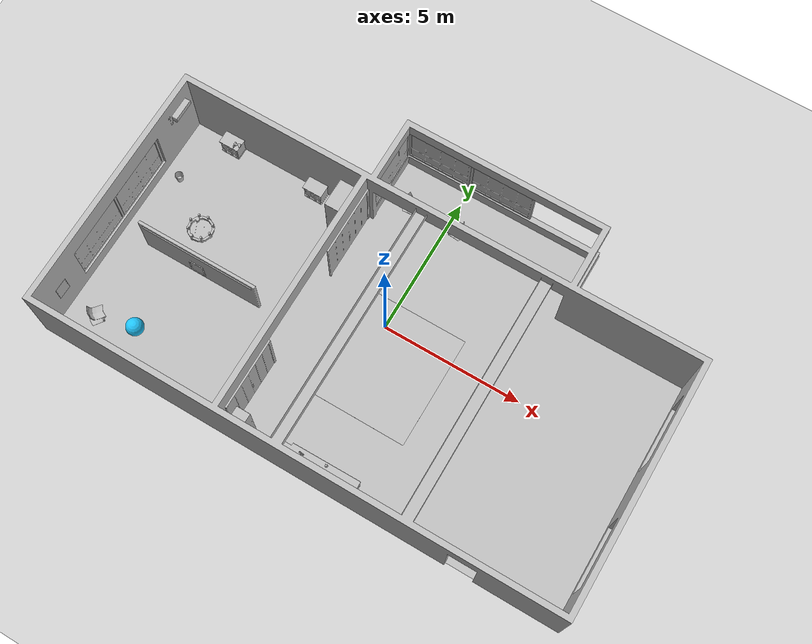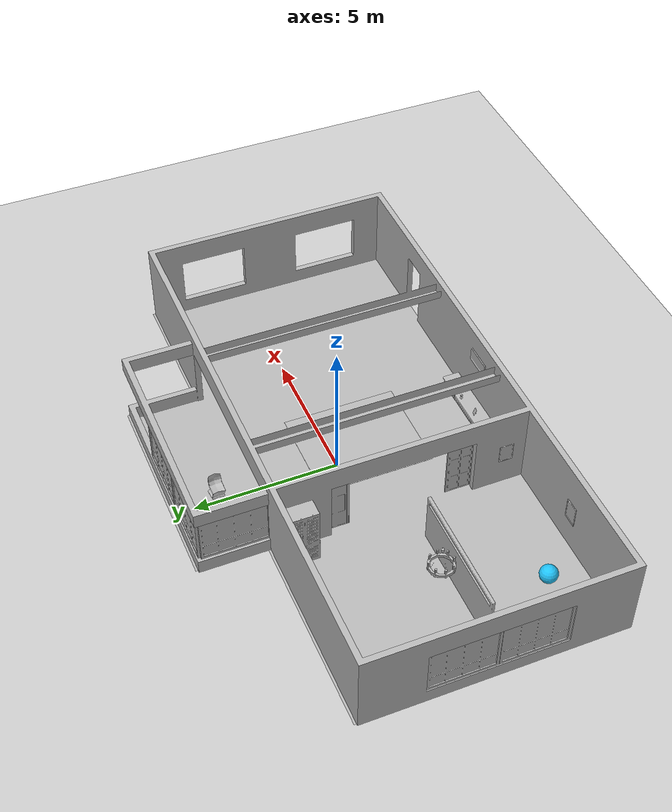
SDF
<sdf version="1.6">
 <world name="default">
  <model name="ground_plane">
   <static>1</static>
   <link name="link">
    <collision name="collision">
     <geometry><plane><normal>0 0 1</normal><size>100 100</size></plane></geometry>
     <surface><friction><ode><mu>100</mu><mu2>50</mu2></ode></friction></surface>
    </collision>
    <visual name="visual">
     <cast_shadows>0</cast_shadows>
     <geometry><plane><normal>0 0 1</normal><size>100 100</size></plane></geometry>
     <material>
      <script><uri>file://media/materials/scripts/gazebo.material</uri><name>Gazebo/Grey</name></script>
     </material>
    </visual>
   </link>
  </model>
  <model name="AirconditionerA_01_001">
   <link name="aws_robomaker_residential_AirconditionerA_01::link">
    <inertial><mass>1</mass></inertial>
    <collision name="collision">
     <geometry>
      <mesh>
       <uri>file://models/aws_robomaker_residential_AirconditionerA_01/meshes/aws_AirconditionerA_01_collision.DAE</uri>
       <scale>1 1 1</scale>
      </mesh>
     </geometry>
    </collision>
    <visual name="visual">
     <geometry>
      <mesh>
       <uri>file://models/aws_robomaker_residential_AirconditionerA_01/meshes/aws_AirconditionerA_01_visual.DAE</uri>
      </mesh>
     </geometry>
     <meta><layer>1</layer></meta>
    </visual>
   </link>
   <static>1</static>
   <pose>-9.19941 2.41123 2.08454 0 -0 0</pose>
  </model>
  <model name="AirconditionerB_01_001">
   <link name="aws_robomaker_residential_AirconditionerB_01::link">
    <inertial>
     <mass>1</mass>
     <inertia><ixx>1</ixx><ixy>0</ixy><ixz>0</ixz><iyy>1</iyy><iyz>0</iyz><izz>1</izz></inertia>
    </inertial>
    <collision name="collision">
     <geometry>
      <mesh>
       <uri>file://models/aws_robomaker_residential_AirconditionerB_01/meshes/aws_AirconditionerB_01_collision.DAE</uri>
       <scale>1 1 1</scale>
      </mesh>
     </geometry>
    </collision>
    <visual name="visual">
     <geometry>
      <mesh>
       <uri>file://models/aws_robomaker_residential_AirconditionerB_01/meshes/aws_AirconditionerB_01_visual.DAE</uri>
      </mesh>
     </geometry>
     <meta><layer>1</layer></meta>
    </visual>
   </link>
   <pose>-2.00466 -5.22661 0.003476 1e-06 -0 0</pose>
  </model>
  <model name="Ball_01_003">
   <link name="aws_robomaker_residential_Ball_01::link">
    <inertial>
     <mass>0.12</mass>
     <inertia>
      <ixx>0.030752</ixx>
      <ixy>0</ixy>
      <ixz>0</ixz>
      <iyy>0.030752</iyy>
      <iyz>0</iyz>
      <izz>0.030752</izz>
     </inertia>
    </inertial>
    <collision name="collision">
     <geometry><sphere><radius>0.31</radius></sphere></geometry>
     <surface>
      <friction><ode><mu>0.85</mu><mu2>0.85</mu2></ode></friction>
      <contact><ode><kd>8500</kd><max_vel>5.1</max_vel></ode></contact>
     </surface>
    </collision>
    <visual name="visual">
     <geometry><sphere><radius>0.31</radius></sphere></geometry>
     <material><diffuse>0.12 0.76 0.97 1</diffuse><ambient>0.03 0.21 0.27 1</ambient></material>
     <meta><layer>1</layer></meta>
    </visual>
   </link>
   <pose>-6.9455 -4.22174 0.31 0 -0 0</pose>
  </model>
  <model name="NightStand_01_001">
   <link name="aws_robomaker_residential_NightStand_01::link">
    <inertial>
     <mass>13.6</mass>
     <inertia><ixx>0.6165</ixx><ixy>0</ixy><ixz>0</ixz><iyy>1.29664</iyy><iyz>0</iyz><izz>0.7706</izz></inertia>
    </inertial>
    <collision name="collision">
     <geometry>
      <mesh>
       <uri>file://models/aws_robomaker_residential_NightStand_01/meshes/aws_NightStand_01_collision.DAE</uri>
       <scale>1 1 1</scale>
      </mesh>
     </geometry>
    </collision>
    <visual name="visual">
     <geometry>
      <mesh>
       <uri>file://models/aws_robomaker_residential_NightStand_01/meshes/aws_NightStand_01_visual.DAE</uri>
      </mesh>
     </geometry>
     <meta><layer>1</layer></meta>
    </visual>
   </link>
   <static>1</static>
   <pose>-7.72551 2.86042 0.005258 -2e-06 0 0</pose>
  </model>
  <model name="NightStand_01_002">
   <link name="aws_robomaker_residential_NightStand_01::link">
    <inertial>
     <mass>13.6</mass>
     <inertia><ixx>0.6165</ixx><ixy>0</ixy><ixz>0</ixz><iyy>1.29664</iyy><iyz>0</iyz><izz>0.7706</izz></inertia>
    </inertial>
    <collision name="collision">
     <geometry>
      <mesh>
       <uri>file://models/aws_robomaker_residential_NightStand_01/meshes/aws_NightStand_01_collision.DAE</uri>
       <scale>1 1 1</scale>
      </mesh>
     </geometry>
    </collision>
    <visual name="visual">
     <geometry>
      <mesh>
       <uri>file://models/aws_robomaker_residential_NightStand_01/meshes/aws_NightStand_01_visual.DAE</uri>
      </mesh>
     </geometry>
     <meta><layer>1</layer></meta>
    </visual>
   </link>
   <static>1</static>
   <pose>-4.40734 2.86042 0.005256 0 2e-06 0</pose>
  </model>
  <model name="ChairD_01_001">
   <link name="aws_robomaker_residential_ChairD_01::link">
    <inertial>
     <mass>4.5</mass>
     <inertia><ixy>0</ixy><ixz>0</ixz><iyz>0</iyz><ixx>0.217</ixx><iyy>0.217</iyy><izz>0.067</izz></inertia>
    </inertial>
    <collision name="collision">
     <geometry>
      <mesh>
       <uri>file://models/aws_robomaker_residential_ChairD_01/meshes/aws_ChairD_01_collision.DAE</uri>
       <scale>1 1 1</scale>
      </mesh>
     </geometry>
    </collision>
    <visual name="visual">
     <geometry>
      <mesh><uri>file://models/aws_robomaker_residential_ChairD_01/meshes/aws_ChairD_01_visual.DAE</uri></mesh>
     </geometry>
     <meta><layer>1</layer></meta>
    </visual>
   </link>
   <pose>-1.38078 4.10446 -0.000255 -1.3e-05 0.000975 -2e-06</pose>
  </model>
  <model name="ChairD_01_002">
   <link name="aws_robomaker_residential_ChairD_01::link">
    <inertial>
     <mass>4.5</mass>
     <inertia><ixy>0</ixy><ixz>0</ixz><iyz>0</iyz><ixx>0.217</ixx><iyy>0.217</iyy><izz>0.067</izz></inertia>
    </inertial>
    <collision name="collision">
     <geometry>
      <mesh>
       <uri>file://models/aws_robomaker_residential_ChairD_01/meshes/aws_ChairD_01_collision.DAE</uri>
       <scale>1 1 1</scale>
      </mesh>
     </geometry>
    </collision>
    <visual name="visual">
     <geometry>
      <mesh><uri>file://models/aws_robomaker_residential_ChairD_01/meshes/aws_ChairD_01_visual.DAE</uri></mesh>
     </geometry>
     <meta><layer>1</layer></meta>
    </visual>
   </link>
   <pose>0.325213 4.10446 -0.000251 -5e-06 0.000976 -3.13874</pose>
  </model>
  <model name="ChairD_01_003">
   <link name="aws_robomaker_residential_ChairD_01::link">
    <inertial>
     <mass>4.5</mass>
     <inertia><ixy>0</ixy><ixz>0</ixz><iyz>0</iyz><ixx>0.217</ixx><iyy>0.217</iyy><izz>0.067</izz></inertia>
    </inertial>
    <collision name="collision">
     <geometry>
      <mesh>
       <uri>file://models/aws_robomaker_residential_ChairD_01/meshes/aws_ChairD_01_collision.DAE</uri>
       <scale>1 1 1</scale>
      </mesh>
     </geometry>
    </collision>
    <visual name="visual">
     <geometry>
      <mesh><uri>file://models/aws_robomaker_residential_ChairD_01/meshes/aws_ChairD_01_visual.DAE</uri></mesh>
     </geometry>
     <meta><layer>1</layer></meta>
    </visual>
   </link>
   <pose>-8.27077 -4.50445 -0.000255 -2.4e-05 0.000974 0.869678</pose>
  </model>
  <model name="Chandelier_01_002">
   <link name="aws_robomaker_residential_Chandelier_01::link">
    <inertial><mass>1</mass></inertial>
    <collision name="collision">
     <geometry>
      <mesh>
       <uri>file://models/aws_robomaker_residential_Chandelier_01/meshes/aws_Chandelier_01_collision.DAE</uri>
       <scale>1 1 1</scale>
      </mesh>
     </geometry>
    </collision>
    <visual name="visual">
     <geometry>
      <mesh>
       <uri>file://models/aws_robomaker_residential_Chandelier_01/meshes/aws_Chandelier_01_visual.DAE</uri>
      </mesh>
     </geometry>
     <meta><layer>2</layer></meta>
    </visual>
   </link>
   <static>1</static>
   <pose>-6.45106 -0.69204 1.81 0 -0 0</pose>
  </model>
  <model name="Carpet_01_001">
   <link name="aws_robomaker_residential_Carpet_01::link">
    <inertial><mass>8.1</mass></inertial>
    <collision name="collision">
     <geometry>
      <mesh>
       <uri>file://models/aws_robomaker_residential_Carpet_01/meshes/aws_Carpet_01_collision.DAE</uri>
       <scale>1 1 0.95</scale>
      </mesh>
     </geometry>
     <pose>0 0 -0.01 0 -0 0</pose>
    </collision>
    <visual name="visual">
     <geometry>
      <mesh><uri>file://models/aws_robomaker_residential_Carpet_01/meshes/aws_Carpet_01_visual.DAE</uri></mesh>
     </geometry>
     <meta><layer>1</layer></meta>
    </visual>
   </link>
   <static>1</static>
   <pose>0.78505 -1.10665 0.001106 0 -0 0</pose>
  </model>
  <model name="SecurityCamera_01_001">
   <link name="aws_robomaker_residential_SecurityCamera_01::link">
    <inertial>
     <mass>1</mass>
     <inertia>
      <ixx>18.2222</ixx>
      <ixy>0</ixy>
      <ixz>0</ixz>
      <iyy>18.2222</iyy>
      <iyz>0</iyz>
      <izz>0.0018767</izz>
     </inertia>
    </inertial>
    <collision name="collision">
     <geometry>
      <mesh>
       <uri>file://models/aws_robomaker_residential_SecurityCamera_01/meshes/aws_SecurityCamera_01_collision.DAE</uri>
       <scale>1 1 1</scale>
      </mesh>
     </geometry>
    </collision>
    <visual name="visual">
     <geometry>
      <mesh>
       <uri>file://models/aws_robomaker_residential_SecurityCamera_01/meshes/aws_SecurityCamera_01_visual.DAE</uri>
      </mesh>
     </geometry>
     <meta><layer>2</layer></meta>
    </visual>
   </link>
   <pose>0.842134 -4.99629 0.492555 1e-06 -2e-06 -2.84104</pose>
  </model>
  <model name="FoldingDoor_01_001">
   <link name="aws_robomaker_residential_FoldingDoor_01::link">
    <inertial><mass>1</mass></inertial>
    <collision name="collision">
     <geometry>
      <mesh>
       <uri>file://models/aws_robomaker_residential_FoldingDoor_01/meshes/aws_FoldingDoor_01_collision.DAE</uri>
       <scale>1 1 1</scale>
      </mesh>
     </geometry>
    </collision>
    <visual name="visual">
     <geometry>
      <mesh>
       <uri>file://models/aws_robomaker_residential_FoldingDoor_01/meshes/aws_FoldingDoor_01_visual.DAE</uri>
      </mesh>
     </geometry>
     <meta><layer>2</layer></meta>
    </visual>
   </link>
   <static>1</static>
   <pose>-2.4611 1.84422 0.041881 0 -0 0</pose>
  </model>
  <model name="FoldingDoor_01_002">
   <link name="aws_robomaker_residential_FoldingDoor_01::link">
    <inertial><mass>1</mass></inertial>
    <collision name="collision">
     <geometry>
      <mesh>
       <uri>file://models/aws_robomaker_residential_FoldingDoor_01/meshes/aws_FoldingDoor_01_collision.DAE</uri>
       <scale>1 1 1</scale>
      </mesh>
     </geometry>
    </collision>
    <visual name="visual">
     <geometry>
      <mesh>
       <uri>file://models/aws_robomaker_residential_FoldingDoor_01/meshes/aws_FoldingDoor_01_visual.DAE</uri>
      </mesh>
     </geometry>
     <meta><layer>2</layer></meta>
    </visual>
   </link>
   <static>1</static>
   <pose>-2.4611 -4.05332 0.041881 0 -0 0</pose>
  </model>
  <model name="HouseWallB_01_001">
   <link name="aws_robomaker_residential_HouseWallB_01::link">
    <inertial><mass>1</mass></inertial>
    <collision name="collision">
     <geometry>
      <mesh>
       <uri>file://models/aws_robomaker_residential_HouseWallB_01/meshes/aws_HouseWallB_01_collision.DAE</uri>
       <scale>1 1 1</scale>
      </mesh>
     </geometry>
    </collision>
    <visual name="visual">
     <geometry>
      <mesh>
       <uri>file://models/aws_robomaker_residential_HouseWallB_01/meshes/aws_HouseWallB_01_visual.DAE</uri>
      </mesh>
     </geometry>
     <meta><layer>2</layer></meta>
    </visual>
   </link>
   <static>1</static>
  </model>
  <model name="FloorB_01_001">
   <link name="aws_robomaker_residential_FloorB_01::link">
    <inertial><mass>100</mass></inertial>
    <collision name="collision">
     <geometry>
      <mesh>
       <uri>file://models/aws_robomaker_residential_FloorB_01/meshes/aws_FloorB_01_collision.DAE</uri>
       <scale>1 1 0.9</scale>
      </mesh>
     </geometry>
     <surface><friction><ode><mu>0.6</mu><mu2>0.6</mu2></ode></friction></surface>
    </collision>
    <visual name="visual">
     <geometry>
      <mesh><uri>file://models/aws_robomaker_residential_FloorB_01/meshes/aws_FloorB_01_visual.DAE</uri></mesh>
     </geometry>
     <meta><layer>1</layer></meta>
    </visual>
   </link>
   <static>1</static>
   <pose>0.058861 0.080239 0 0 -0 0</pose>
  </model>
  <model name="LightC_01_002">
   <link name="aws_robomaker_residential_LightC_01::link">
    <inertial><mass>1</mass></inertial>
    <collision name="collision">
     <geometry>
      <mesh>
       <uri>file://models/aws_robomaker_residential_LightC_01/meshes/aws_LightC_01_collision.DAE</uri>
       <scale>1 1 1</scale>
      </mesh>
     </geometry>
    </collision>
    <visual name="visual">
     <geometry>
      <mesh><uri>file://models/aws_robomaker_residential_LightC_01/meshes/aws_LightC_01_visual.DAE</uri></mesh>
     </geometry>
     <meta><layer>2</layer></meta>
    </visual>
   </link>
   <static>1</static>
   <pose>-0.138245 -5.44437 2 0 -0 0</pose>
  </model>
  <model name="PortraitA_01">
   <link name="aws_robomaker_residential_PortraitA_01::link">
    <inertial><mass>1</mass></inertial>
    <collision name="collision">
     <geometry>
      <mesh>
       <uri>file://models/aws_robomaker_residential_PortraitA_01/meshes/aws_PortraitA_01_collision.DAE</uri>
       <scale>1 1 1</scale>
      </mesh>
     </geometry>
    </collision>
    <visual name="visual">
     <geometry>
      <mesh>
       <uri>file://models/aws_robomaker_residential_PortraitA_01/meshes/aws_PortraitA_01_visual.DAE</uri>
      </mesh>
     </geometry>
     <meta><layer>2</layer></meta>
    </visual>
   </link>
   <static>1</static>
   <pose>-2.71236 -4.81754 1 0 -0 1.5668</pose>
  </model>
  <model name="PortraitB_01">
   <link name="aws_robomaker_residential_PortraitB_01::link">
    <inertial><mass>1</mass></inertial>
    <collision name="collision">
     <geometry>
      <mesh>
       <uri>file://models/aws_robomaker_residential_PortraitB_01/meshes/aws_PortraitB_01_collision.DAE</uri>
       <scale>1 1 1</scale>
      </mesh>
     </geometry>
    </collision>
    <visual name="visual">
     <geometry>
      <mesh>
       <uri>file://models/aws_robomaker_residential_PortraitB_01/meshes/aws_PortraitB_01_visual.DAE</uri>
      </mesh>
     </geometry>
     <meta><layer>2</layer></meta>
    </visual>
   </link>
   <static>1</static>
   <pose>-1.27968 -5.42963 0 -0.076901 0 -3.11672</pose>
  </model>
  <model name="PortraitC_01">
   <link name="aws_robomaker_residential_PortraitC_01::link">
    <inertial><mass>1</mass></inertial>
    <collision name="collision">
     <geometry>
      <mesh>
       <uri>file://models/aws_robomaker_residential_PortraitC_01/meshes/aws_PortraitC_01_collision.DAE</uri>
       <scale>1 1 1</scale>
      </mesh>
     </geometry>
    </collision>
    <visual name="visual">
     <geometry>
      <mesh>
       <uri>file://models/aws_robomaker_residential_PortraitC_01/meshes/aws_PortraitC_01_visual.DAE</uri>
      </mesh>
     </geometry>
     <meta><layer>2</layer></meta>
    </visual>
   </link>
   <static>1</static>
   <pose>-9.2949 -4.52608 1 0 -0 1.55473</pose>
  </model>
  <model name="PortraitD_01">
   <link name="aws_robomaker_residential_PortraitD_01::link">
    <inertial><mass>1.5</mass></inertial>
    <collision name="collision">
     <geometry>
      <mesh>
       <uri>file://models/aws_robomaker_residential_PortraitD_01/meshes/aws_PortraitD_01_collision.DAE</uri>
       <scale>1 1 1</scale>
      </mesh>
     </geometry>
    </collision>
    <visual name="visual">
     <geometry>
      <mesh>
       <uri>file://models/aws_robomaker_residential_PortraitD_01/meshes/aws_PortraitD_01_visual.DAE</uri>
      </mesh>
     </geometry>
     <meta><layer>2</layer></meta>
    </visual>
   </link>
   <static>1</static>
   <pose>0.789763 -5.47872 1.8 0 -0 3.13853</pose>
  </model>
  <model name="PortraitE_01">
   <link name="aws_robomaker_residential_PortraitE_01::link">
    <inertial><mass>1</mass></inertial>
    <collision name="collision">
     <geometry>
      <mesh>
       <uri>file://models/aws_robomaker_residential_PortraitE_01/meshes/aws_PortraitE_01_collision.DAE</uri>
       <scale>1 1 1</scale>
      </mesh>
     </geometry>
    </collision>
    <visual name="visual">
     <geometry>
      <mesh>
       <uri>file://models/aws_robomaker_residential_PortraitE_01/meshes/aws_PortraitE_01_visual.DAE</uri>
      </mesh>
     </geometry>
     <meta><layer>2</layer></meta>
    </visual>
   </link>
   <static>1</static>
   <pose>-5.77309 -5.49247 1 0 -0 3.13263</pose>
  </model>
  <model name="PortraitE_02">
   <link name="aws_robomaker_residential_PortraitE_02::link">
    <inertial><mass>1</mass></inertial>
    <collision name="collision">
     <geometry>
      <mesh>
       <uri>file://models/aws_robomaker_residential_PortraitE_02/meshes/aws_PortraitE_01_collision.DAE</uri>
       <scale>1 1 1</scale>
      </mesh>
     </geometry>
    </collision>
    <visual name="visual">
     <geometry>
      <mesh>
       <uri>file://models/aws_robomaker_residential_PortraitE_02/meshes/aws_PortraitE_01_visual.DAE</uri>
      </mesh>
     </geometry>
     <meta><layer>2</layer></meta>
    </visual>
   </link>
   <static>1</static>
   <pose>-6.19302 -1.59021 0.3 0 -0 0.00429</pose>
  </model>
  <model name="DeskPortraitA_01">
   <link name="aws_robomaker_residential_DeskPortraitA_01::link">
    <inertial>
     <mass>1</mass>
     <inertia><ixx>0.0835</ixx><ixy>0</ixy><ixz>0</ixz><iyy>0.16</iyy><iyz>0</iyz><izz>0.08347</izz></inertia>
    </inertial>
    <collision name="collision">
     <geometry>
      <mesh>
       <uri>file://models/aws_robomaker_residential_DeskPortraitA_01/meshes/aws_DeskPortraitA_01_collision.DAE</uri>
       <scale>1 1 1</scale>
      </mesh>
     </geometry>
    </collision>
    <visual name="visual">
     <geometry>
      <mesh>
       <uri>file://models/aws_robomaker_residential_DeskPortraitA_01/meshes/aws_DeskPortraitA_01_visual.DAE</uri>
      </mesh>
     </geometry>
     <meta><layer>1</layer></meta>
    </visual>
   </link>
   <pose>-0.036864 -5.11016 0.4926 -0.00054 -2e-06 2.92775</pose>
  </model>
  <model name="DeskPortraitD_02">
   <link name="aws_robomaker_residential_DeskPortraitD_02::link">
    <inertial>
     <mass>0.4</mass>
     <inertia><ixx>0.0616</ixx><ixy>0</ixy><ixz>0</ixz><iyy>0.1313</iyy><iyz>0</iyz><izz>0.0803</izz></inertia>
    </inertial>
    <collision name="collision">
     <geometry>
      <mesh>
       <uri>file://models/aws_robomaker_residential_DeskPortraitD_02/meshes/aws_DeskPortraitD_01_collision.DAE</uri>
       <scale>1 1 1</scale>
      </mesh>
     </geometry>
     <surface>
      <friction><ode><mu>0.7</mu><mu2>0.7</mu2></ode></friction>
      <contact><ode><kd>28500</kd></ode></contact>
     </surface>
    </collision>
    <visual name="visual">
     <geometry>
      <mesh>
       <uri>file://models/aws_robomaker_residential_DeskPortraitD_02/meshes/aws_DeskPortraitD_01_visual.DAE</uri>
      </mesh>
     </geometry>
     <meta><layer>1</layer></meta>
    </visual>
   </link>
   <pose>-0.589211 -5.10989 0.192362 2e-06 -0 -3.11254</pose>
  </model>
  <model name="Trash_01_002">
   <link name="aws_robomaker_residential_Trash_01::link">
    <inertial>
     <mass>0.1</mass>
     <inertia><ixy>0</ixy><ixz>0</ixz><iyz>0</iyz><ixx>0.05288</ixx><iyy>0.05288</iyy><izz>0.09132</izz></inertia>
    </inertial>
    <collision name="collision">
     <geometry>
      <mesh>
       <uri>file://models/aws_robomaker_residential_Trash_01/meshes/aws_Trash_01_collision.DAE</uri>
       <scale>1 1 1</scale>
      </mesh>
     </geometry>
    </collision>
    <visual name="visual">
     <geometry>
      <mesh><uri>file://models/aws_robomaker_residential_Trash_01/meshes/aws_Trash_01_visual.DAE</uri></mesh>
     </geometry>
     <meta><layer>1</layer></meta>
    </visual>
   </link>
   <pose>-8.70415 1.00058 0.000904 -1e-06 -0 1e-06</pose>
  </model>
  <model name="TVCabinet_01_001">
   <link name="aws_robomaker_residential_TVCabinet_01::link">
    <inertial>
     <mass>59.2</mass>
     <inertia><ixx>30.4</ixx><ixy>0</ixy><ixz>0</ixz><iyy>2.56</iyy><iyz>0</iyz><izz>31.38</izz></inertia>
    </inertial>
    <collision name="collision">
     <geometry>
      <mesh>
       <uri>file://models/aws_robomaker_residential_TVCabinet_01/meshes/aws_TVCabinet_01_collision.DAE</uri>
       <scale>1 1 1</scale>
      </mesh>
     </geometry>
    </collision>
    <visual name="visual">
     <geometry>
      <mesh>
       <uri>file://models/aws_robomaker_residential_TVCabinet_01/meshes/aws_TVCabinet_01_visual.DAE</uri>
      </mesh>
     </geometry>
     <meta><layer>1</layer></meta>
    </visual>
   </link>
   <static>1</static>
   <pose>0.629509 -5.18358 -0.017049 0 -0 1.5792</pose>
  </model>
  <model name="RoomWall_01_001">
   <link name="aws_robomaker_residential_RoomWall_01::link">
    <inertial><mass>100</mass></inertial>
    <collision name="collision">
     <geometry>
      <mesh>
       <uri>file://models/aws_robomaker_residential_RoomWall_01/meshes/aws_RoomWall_01_collision.DAE</uri>
       <scale>1 1 1</scale>
      </mesh>
     </geometry>
    </collision>
    <visual name="visual">
     <geometry>
      <mesh><uri>file://models/aws_robomaker_residential_RoomWall_01/meshes/aws_RoomWall_01_visual.DAE</uri></mesh>
     </geometry>
     <meta><layer>2</layer></meta>
    </visual>
   </link>
   <static>1</static>
   <pose>-6.09755 -1.49618 0.028124 0 -0 0</pose>
  </model>
  <model name="Wardrobe_01_001">
   <link name="aws_robomaker_residential_Wardrobe_01::link">
    <inertial><mass>51.7</mass></inertial>
    <collision name="collision">
     <geometry>
      <mesh>
       <uri>file://models/aws_robomaker_residential_Wardrobe_01/meshes/aws_Wardrobe_01_collision.DAE</uri>
       <scale>1 1 1</scale>
      </mesh>
     </geometry>
    </collision>
    <visual name="visual">
     <geometry>
      <mesh><uri>file://models/aws_robomaker_residential_Wardrobe_01/meshes/aws_Wardrobe_01_visual.DAE</uri></mesh>
     </geometry>
     <meta><layer>1</layer></meta>
    </visual>
   </link>
   <static>1</static>
   <pose>-3.14671 2.4762 0.000704 0 0 -1.56967</pose>
  </model>
  <model name="RoomWindow_01_001">
   <link name="aws_robomaker_residential_RoomWindow_01::link">
    <inertial><mass>1</mass></inertial>
    <collision name="collision">
     <geometry>
      <mesh>
       <uri>file://models/aws_robomaker_residential_RoomWindow_01/meshes/aws_RoomWindow_01_collision.DAE</uri>
       <scale>1 1 1</scale>
      </mesh>
     </geometry>
    </collision>
    <visual name="visual">
     <geometry>
      <mesh>
       <uri>file://models/aws_robomaker_residential_RoomWindow_01/meshes/aws_RoomWindow_01_visual.DAE</uri>
      </mesh>
     </geometry>
     <meta><layer>2</layer></meta>
    </visual>
   </link>
   <static>1</static>
   <pose>-9.4186 -0.026285 0.502739 0 -0 0</pose>
  </model>
  <model name="RoomWindow_01_002">
   <link name="aws_robomaker_residential_RoomWindow_01::link">
    <inertial><mass>1</mass></inertial>
    <collision name="collision">
     <geometry>
      <mesh>
       <uri>file://models/aws_robomaker_residential_RoomWindow_01/meshes/aws_RoomWindow_01_collision.DAE</uri>
       <scale>1 1 1</scale>
      </mesh>
     </geometry>
    </collision>
    <visual name="visual">
     <geometry>
      <mesh>
       <uri>file://models/aws_robomaker_residential_RoomWindow_01/meshes/aws_RoomWindow_01_visual.DAE</uri>
      </mesh>
     </geometry>
     <meta><layer>2</layer></meta>
    </visual>
   </link>
   <static>1</static>
   <pose>-9.4186 -2.37409 0.502739 0 -0 0</pose>
  </model>
  <model name="RoomWindow_01_007">
   <link name="aws_robomaker_residential_RoomWindow_01::link">
    <inertial><mass>1</mass></inertial>
    <collision name="collision">
     <geometry>
      <mesh>
       <uri>file://models/aws_robomaker_residential_RoomWindow_01/meshes/aws_RoomWindow_01_collision.DAE</uri>
       <scale>1 1 1</scale>
      </mesh>
     </geometry>
    </collision>
    <visual name="visual">
     <geometry>
      <mesh>
       <uri>file://models/aws_robomaker_residential_RoomWindow_01/meshes/aws_RoomWindow_01_visual.DAE</uri>
      </mesh>
     </geometry>
     <meta><layer>2</layer></meta>
    </visual>
   </link>
   <static>1</static>
   <pose>1.14095 5.60069 0.502739 0 0 -1.56627</pose>
  </model>
  <model name="RoomWindow_01_008">
   <link name="aws_robomaker_residential_RoomWindow_01::link">
    <inertial><mass>1</mass></inertial>
    <collision name="collision">
     <geometry>
      <mesh>
       <uri>file://models/aws_robomaker_residential_RoomWindow_01/meshes/aws_RoomWindow_01_collision.DAE</uri>
       <scale>1 1 1</scale>
      </mesh>
     </geometry>
    </collision>
    <visual name="visual">
     <geometry>
      <mesh>
       <uri>file://models/aws_robomaker_residential_RoomWindow_01/meshes/aws_RoomWindow_01_visual.DAE</uri>
      </mesh>
     </geometry>
     <meta><layer>2</layer></meta>
    </visual>
   </link>
   <static>1</static>
   <pose>-1.19934 5.60069 0.502739 0 0 -1.56627</pose>
  </model>
  <model name="RoomWindow_01_009">
   <link name="aws_robomaker_residential_RoomWindow_01::link">
    <inertial><mass>1</mass></inertial>
    <collision name="collision">
     <geometry>
      <mesh>
       <uri>file://models/aws_robomaker_residential_RoomWindow_01/meshes/aws_RoomWindow_01_collision.DAE</uri>
       <scale>1 1 1</scale>
      </mesh>
     </geometry>
    </collision>
    <visual name="visual">
     <geometry>
      <mesh>
       <uri>file://models/aws_robomaker_residential_RoomWindow_01/meshes/aws_RoomWindow_01_visual.DAE</uri>
      </mesh>
     </geometry>
     <meta><layer>2</layer></meta>
    </visual>
   </link>
   <static>1</static>
   <pose>-2.39662 4.38761 0.502739 0 -0 0</pose>
  </model>
  <model name="drill">
   <link name="link">
    <inertial>
     <pose>-0.00637 -0.008 0.13254 0 -0 0</pose>
     <inertia>
      <ixx>0.0133113</ixx>
      <ixy>-0.00030365</ixy>
      <ixz>-0.00034148</ixz>
      <iyy>0.0115766</iyy>
      <iyz>0.00088073</iyz>
      <izz>0.00378028</izz>
     </inertia>
     <mass>1.50252</mass>
    </inertial>
    <collision name="collision">
     <pose>0 0 -0.09 0 -0 0</pose>
     <geometry><mesh><uri>model://cordless_drill/meshes/cordless_drill.stl</uri></mesh></geometry>
     <surface><contact><ode><max_vel>0.1</max_vel><min_depth>0.001</min_depth></ode></contact></surface>
    </collision>
    <visual name="visual">
     <pose>0 0 -0.09 0 -0 0</pose>
     <geometry><mesh><uri>model://cordless_drill/meshes/cordless_drill.dae</uri></mesh></geometry>
    </visual>
   </link>
   <pose>-7.34836 2.8333 0.726642 -1.59396 1.48463 1.84705</pose>
  </model>
 </world>
</sdf>
